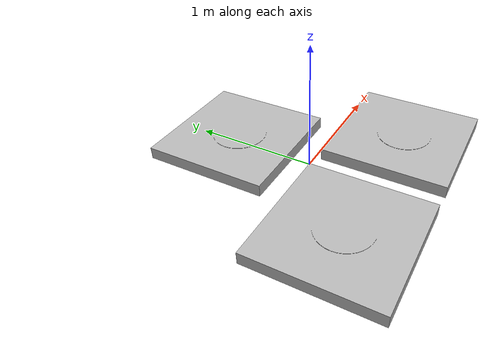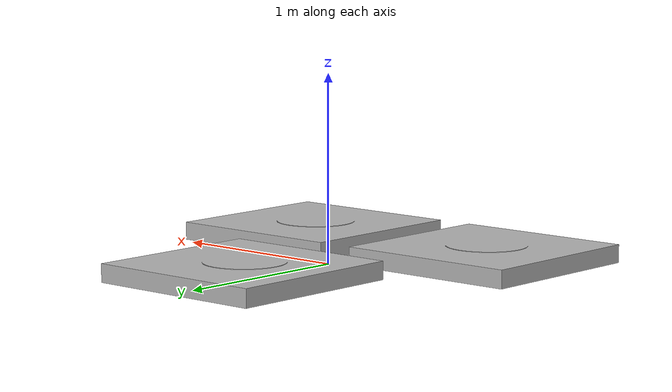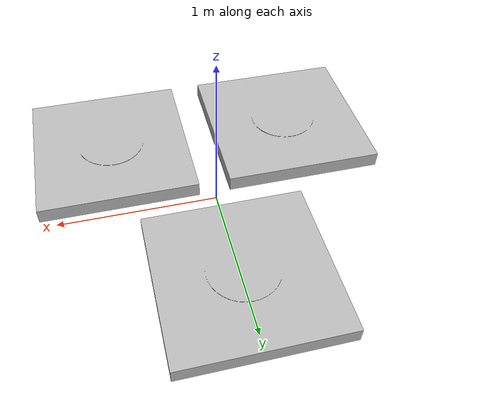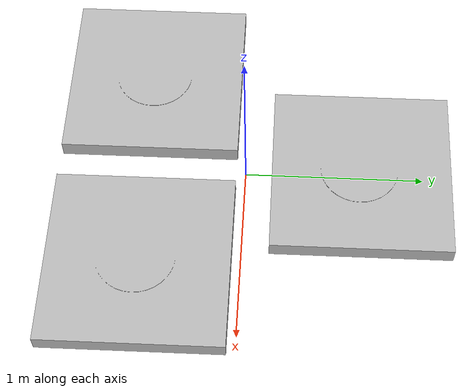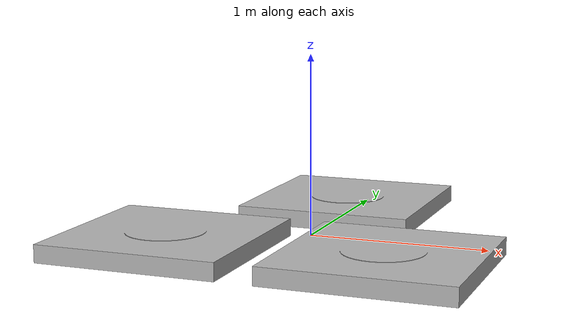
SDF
<?xml version="1.0"?>
<sdf version="1.5">
    <model name="platform_scnd">
        <static>true</static>
        <link name="link">
            <collision name="collision">
                <pose>0 0 0 0 0 0</pose>
                <geometry>
                    <mesh>
                        <uri>model://platform_scnd_2/meshes/platform_13141597542.dae</uri>
                    </mesh>
                </geometry>
            </collision>
            <visual name="visual">
              <pose>0 0 0 0 0 0</pose>
              <geometry>
              <mesh>
                 <uri>model://platform_scnd_2/meshes/platform_13141597542.dae</uri>
              </mesh>
              </geometry>

              <material>
                  <script>
                      <uri>model://platform_scnd_2/materials/scripts</uri>
                      <uri>model://platform_scnd_2/materials/textures</uri>
                      <name>platformscndMat/Diffuse</name>
                  </script>
              </material>
             </visual>
        </link>
    </model>
</sdf>
